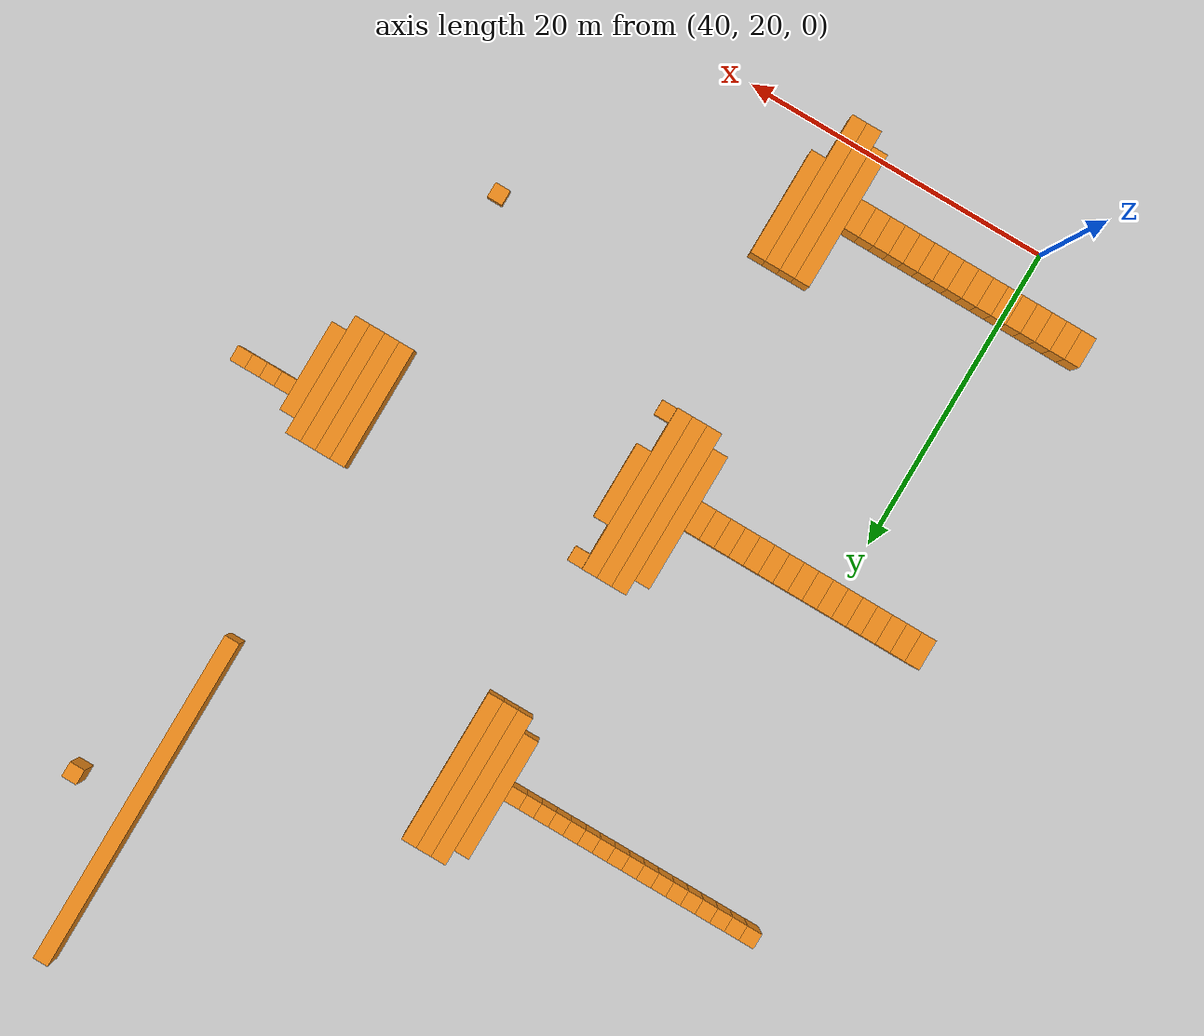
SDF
<sdf version="1.6">
 <world name="default">
  <include><uri>model://ground_plane</uri></include>
  <model name="unit_box_357">
   <pose>34.50    44.00     1.50 0 0 0</pose>
   <static>1</static>
   <link name="link">
    <inertial>
     <mass>5000</mass>
     <inertia><ixx>200</ixx><ixy>0</ixy><ixz>0</ixz><iyy>200</iyy><iyz>0</iyz><izz>200</izz></inertia>
    </inertial>
    <collision name="collision"><geometry><box><size>1 2 3</size></box></geometry></collision>
    <visual name="visual">
     <geometry><box><size>1 2 3</size></box></geometry>
     <material>
      <script><name>Gazebo/Orange</name><uri>file://media/materials/scripts/gazebo.material</uri></script>
     </material>
    </visual>
   </link>
  </model>
  <model name="unit_box_358">
   <pose>34.50    63.50     1.50 0 0 0</pose>
   <static>1</static>
   <link name="link">
    <inertial>
     <mass>5000</mass>
     <inertia><ixx>200</ixx><ixy>0</ixy><ixz>0</ixz><iyy>200</iyy><iyz>0</iyz><izz>200</izz></inertia>
    </inertial>
    <collision name="collision"><geometry><box><size>1 1 3</size></box></geometry></collision>
    <visual name="visual">
     <geometry><box><size>1 1 3</size></box></geometry>
     <material>
      <script><name>Gazebo/Orange</name><uri>file://media/materials/scripts/gazebo.material</uri></script>
     </material>
    </visual>
   </link>
  </model>
  <model name="unit_box_369">
   <pose>35.50    24.00     1.50 0 0 0</pose>
   <static>1</static>
   <link name="link">
    <inertial>
     <mass>5000</mass>
     <inertia><ixx>200</ixx><ixy>0</ixy><ixz>0</ixz><iyy>200</iyy><iyz>0</iyz><izz>200</izz></inertia>
    </inertial>
    <collision name="collision"><geometry><box><size>1 2 3</size></box></geometry></collision>
    <visual name="visual">
     <geometry><box><size>1 2 3</size></box></geometry>
     <material>
      <script><name>Gazebo/Orange</name><uri>file://media/materials/scripts/gazebo.material</uri></script>
     </material>
    </visual>
   </link>
  </model>
  <model name="unit_box_370">
   <pose>35.50    44.00     1.50 0 0 0</pose>
   <static>1</static>
   <link name="link">
    <inertial>
     <mass>5000</mass>
     <inertia><ixx>200</ixx><ixy>0</ixy><ixz>0</ixz><iyy>200</iyy><iyz>0</iyz><izz>200</izz></inertia>
    </inertial>
    <collision name="collision"><geometry><box><size>1 2 3</size></box></geometry></collision>
    <visual name="visual">
     <geometry><box><size>1 2 3</size></box></geometry>
     <material>
      <script><name>Gazebo/Orange</name><uri>file://media/materials/scripts/gazebo.material</uri></script>
     </material>
    </visual>
   </link>
  </model>
  <model name="unit_box_371">
   <pose>35.50    63.50     1.50 0 0 0</pose>
   <static>1</static>
   <link name="link">
    <inertial>
     <mass>5000</mass>
     <inertia><ixx>200</ixx><ixy>0</ixy><ixz>0</ixz><iyy>200</iyy><iyz>0</iyz><izz>200</izz></inertia>
    </inertial>
    <collision name="collision"><geometry><box><size>1 1 3</size></box></geometry></collision>
    <visual name="visual">
     <geometry><box><size>1 1 3</size></box></geometry>
     <material>
      <script><name>Gazebo/Orange</name><uri>file://media/materials/scripts/gazebo.material</uri></script>
     </material>
    </visual>
   </link>
  </model>
  <model name="unit_box_382">
   <pose>36.50    24.00     1.50 0 0 0</pose>
   <static>1</static>
   <link name="link">
    <inertial>
     <mass>5000</mass>
     <inertia><ixx>200</ixx><ixy>0</ixy><ixz>0</ixz><iyy>200</iyy><iyz>0</iyz><izz>200</izz></inertia>
    </inertial>
    <collision name="collision"><geometry><box><size>1 2 3</size></box></geometry></collision>
    <visual name="visual">
     <geometry><box><size>1 2 3</size></box></geometry>
     <material>
      <script><name>Gazebo/Orange</name><uri>file://media/materials/scripts/gazebo.material</uri></script>
     </material>
    </visual>
   </link>
  </model>
  <model name="unit_box_383">
   <pose>36.50    44.00     1.50 0 0 0</pose>
   <static>1</static>
   <link name="link">
    <inertial>
     <mass>5000</mass>
     <inertia><ixx>200</ixx><ixy>0</ixy><ixz>0</ixz><iyy>200</iyy><iyz>0</iyz><izz>200</izz></inertia>
    </inertial>
    <collision name="collision"><geometry><box><size>1 2 3</size></box></geometry></collision>
    <visual name="visual">
     <geometry><box><size>1 2 3</size></box></geometry>
     <material>
      <script><name>Gazebo/Orange</name><uri>file://media/materials/scripts/gazebo.material</uri></script>
     </material>
    </visual>
   </link>
  </model>
  <model name="unit_box_384">
   <pose>36.50    63.50     1.50 0 0 0</pose>
   <static>1</static>
   <link name="link">
    <inertial>
     <mass>5000</mass>
     <inertia><ixx>200</ixx><ixy>0</ixy><ixz>0</ixz><iyy>200</iyy><iyz>0</iyz><izz>200</izz></inertia>
    </inertial>
    <collision name="collision"><geometry><box><size>1 1 3</size></box></geometry></collision>
    <visual name="visual">
     <geometry><box><size>1 1 3</size></box></geometry>
     <material>
      <script><name>Gazebo/Orange</name><uri>file://media/materials/scripts/gazebo.material</uri></script>
     </material>
    </visual>
   </link>
  </model>
  <model name="unit_box_395">
   <pose>37.50    24.00     1.50 0 0 0</pose>
   <static>1</static>
   <link name="link">
    <inertial>
     <mass>5000</mass>
     <inertia><ixx>200</ixx><ixy>0</ixy><ixz>0</ixz><iyy>200</iyy><iyz>0</iyz><izz>200</izz></inertia>
    </inertial>
    <collision name="collision"><geometry><box><size>1 2 3</size></box></geometry></collision>
    <visual name="visual">
     <geometry><box><size>1 2 3</size></box></geometry>
     <material>
      <script><name>Gazebo/Orange</name><uri>file://media/materials/scripts/gazebo.material</uri></script>
     </material>
    </visual>
   </link>
  </model>
  <model name="unit_box_396">
   <pose>37.50    44.00     1.50 0 0 0</pose>
   <static>1</static>
   <link name="link">
    <inertial>
     <mass>5000</mass>
     <inertia><ixx>200</ixx><ixy>0</ixy><ixz>0</ixz><iyy>200</iyy><iyz>0</iyz><izz>200</izz></inertia>
    </inertial>
    <collision name="collision"><geometry><box><size>1 2 3</size></box></geometry></collision>
    <visual name="visual">
     <geometry><box><size>1 2 3</size></box></geometry>
     <material>
      <script><name>Gazebo/Orange</name><uri>file://media/materials/scripts/gazebo.material</uri></script>
     </material>
    </visual>
   </link>
  </model>
  <model name="unit_box_397">
   <pose>37.50    63.50     1.50 0 0 0</pose>
   <static>1</static>
   <link name="link">
    <inertial>
     <mass>5000</mass>
     <inertia><ixx>200</ixx><ixy>0</ixy><ixz>0</ixz><iyy>200</iyy><iyz>0</iyz><izz>200</izz></inertia>
    </inertial>
    <collision name="collision"><geometry><box><size>1 1 3</size></box></geometry></collision>
    <visual name="visual">
     <geometry><box><size>1 1 3</size></box></geometry>
     <material>
      <script><name>Gazebo/Orange</name><uri>file://media/materials/scripts/gazebo.material</uri></script>
     </material>
    </visual>
   </link>
  </model>
  <model name="unit_box_408">
   <pose>38.50    24.00     1.50 0 0 0</pose>
   <static>1</static>
   <link name="link">
    <inertial>
     <mass>5000</mass>
     <inertia><ixx>200</ixx><ixy>0</ixy><ixz>0</ixz><iyy>200</iyy><iyz>0</iyz><izz>200</izz></inertia>
    </inertial>
    <collision name="collision"><geometry><box><size>1 2 3</size></box></geometry></collision>
    <visual name="visual">
     <geometry><box><size>1 2 3</size></box></geometry>
     <material>
      <script><name>Gazebo/Orange</name><uri>file://media/materials/scripts/gazebo.material</uri></script>
     </material>
    </visual>
   </link>
  </model>
  <model name="unit_box_409">
   <pose>38.50    44.00     1.50 0 0 0</pose>
   <static>1</static>
   <link name="link">
    <inertial>
     <mass>5000</mass>
     <inertia><ixx>200</ixx><ixy>0</ixy><ixz>0</ixz><iyy>200</iyy><iyz>0</iyz><izz>200</izz></inertia>
    </inertial>
    <collision name="collision"><geometry><box><size>1 2 3</size></box></geometry></collision>
    <visual name="visual">
     <geometry><box><size>1 2 3</size></box></geometry>
     <material>
      <script><name>Gazebo/Orange</name><uri>file://media/materials/scripts/gazebo.material</uri></script>
     </material>
    </visual>
   </link>
  </model>
  <model name="unit_box_410">
   <pose>38.50    63.50     1.50 0 0 0</pose>
   <static>1</static>
   <link name="link">
    <inertial>
     <mass>5000</mass>
     <inertia><ixx>200</ixx><ixy>0</ixy><ixz>0</ixz><iyy>200</iyy><iyz>0</iyz><izz>200</izz></inertia>
    </inertial>
    <collision name="collision"><geometry><box><size>1 1 3</size></box></geometry></collision>
    <visual name="visual">
     <geometry><box><size>1 1 3</size></box></geometry>
     <material>
      <script><name>Gazebo/Orange</name><uri>file://media/materials/scripts/gazebo.material</uri></script>
     </material>
    </visual>
   </link>
  </model>
  <model name="unit_box_421">
   <pose>39.50    24.00     1.50 0 0 0</pose>
   <static>1</static>
   <link name="link">
    <inertial>
     <mass>5000</mass>
     <inertia><ixx>200</ixx><ixy>0</ixy><ixz>0</ixz><iyy>200</iyy><iyz>0</iyz><izz>200</izz></inertia>
    </inertial>
    <collision name="collision"><geometry><box><size>1 2 3</size></box></geometry></collision>
    <visual name="visual">
     <geometry><box><size>1 2 3</size></box></geometry>
     <material>
      <script><name>Gazebo/Orange</name><uri>file://media/materials/scripts/gazebo.material</uri></script>
     </material>
    </visual>
   </link>
  </model>
  <model name="unit_box_422">
   <pose>39.50    44.00     1.50 0 0 0</pose>
   <static>1</static>
   <link name="link">
    <inertial>
     <mass>5000</mass>
     <inertia><ixx>200</ixx><ixy>0</ixy><ixz>0</ixz><iyy>200</iyy><iyz>0</iyz><izz>200</izz></inertia>
    </inertial>
    <collision name="collision"><geometry><box><size>1 2 3</size></box></geometry></collision>
    <visual name="visual">
     <geometry><box><size>1 2 3</size></box></geometry>
     <material>
      <script><name>Gazebo/Orange</name><uri>file://media/materials/scripts/gazebo.material</uri></script>
     </material>
    </visual>
   </link>
  </model>
  <model name="unit_box_423">
   <pose>39.50    63.50     1.50 0 0 0</pose>
   <static>1</static>
   <link name="link">
    <inertial>
     <mass>5000</mass>
     <inertia><ixx>200</ixx><ixy>0</ixy><ixz>0</ixz><iyy>200</iyy><iyz>0</iyz><izz>200</izz></inertia>
    </inertial>
    <collision name="collision"><geometry><box><size>1 1 3</size></box></geometry></collision>
    <visual name="visual">
     <geometry><box><size>1 1 3</size></box></geometry>
     <material>
      <script><name>Gazebo/Orange</name><uri>file://media/materials/scripts/gazebo.material</uri></script>
     </material>
    </visual>
   </link>
  </model>
  <model name="unit_box_434">
   <pose>40.50    24.00     1.50 0 0 0</pose>
   <static>1</static>
   <link name="link">
    <inertial>
     <mass>5000</mass>
     <inertia><ixx>200</ixx><ixy>0</ixy><ixz>0</ixz><iyy>200</iyy><iyz>0</iyz><izz>200</izz></inertia>
    </inertial>
    <collision name="collision"><geometry><box><size>1 2 3</size></box></geometry></collision>
    <visual name="visual">
     <geometry><box><size>1 2 3</size></box></geometry>
     <material>
      <script><name>Gazebo/Orange</name><uri>file://media/materials/scripts/gazebo.material</uri></script>
     </material>
    </visual>
   </link>
  </model>
  <model name="unit_box_435">
   <pose>40.50    44.00     1.50 0 0 0</pose>
   <static>1</static>
   <link name="link">
    <inertial>
     <mass>5000</mass>
     <inertia><ixx>200</ixx><ixy>0</ixy><ixz>0</ixz><iyy>200</iyy><iyz>0</iyz><izz>200</izz></inertia>
    </inertial>
    <collision name="collision"><geometry><box><size>1 2 3</size></box></geometry></collision>
    <visual name="visual">
     <geometry><box><size>1 2 3</size></box></geometry>
     <material>
      <script><name>Gazebo/Orange</name><uri>file://media/materials/scripts/gazebo.material</uri></script>
     </material>
    </visual>
   </link>
  </model>
  <model name="unit_box_436">
   <pose>40.50    63.50     1.50 0 0 0</pose>
   <static>1</static>
   <link name="link">
    <inertial>
     <mass>5000</mass>
     <inertia><ixx>200</ixx><ixy>0</ixy><ixz>0</ixz><iyy>200</iyy><iyz>0</iyz><izz>200</izz></inertia>
    </inertial>
    <collision name="collision"><geometry><box><size>1 1 3</size></box></geometry></collision>
    <visual name="visual">
     <geometry><box><size>1 1 3</size></box></geometry>
     <material>
      <script><name>Gazebo/Orange</name><uri>file://media/materials/scripts/gazebo.material</uri></script>
     </material>
    </visual>
   </link>
  </model>
  <model name="unit_box_447">
   <pose>41.50    24.00     1.50 0 0 0</pose>
   <static>1</static>
   <link name="link">
    <inertial>
     <mass>5000</mass>
     <inertia><ixx>200</ixx><ixy>0</ixy><ixz>0</ixz><iyy>200</iyy><iyz>0</iyz><izz>200</izz></inertia>
    </inertial>
    <collision name="collision"><geometry><box><size>1 2 3</size></box></geometry></collision>
    <visual name="visual">
     <geometry><box><size>1 2 3</size></box></geometry>
     <material>
      <script><name>Gazebo/Orange</name><uri>file://media/materials/scripts/gazebo.material</uri></script>
     </material>
    </visual>
   </link>
  </model>
  <model name="unit_box_448">
   <pose>41.50    44.00     1.50 0 0 0</pose>
   <static>1</static>
   <link name="link">
    <inertial>
     <mass>5000</mass>
     <inertia><ixx>200</ixx><ixy>0</ixy><ixz>0</ixz><iyy>200</iyy><iyz>0</iyz><izz>200</izz></inertia>
    </inertial>
    <collision name="collision"><geometry><box><size>1 2 3</size></box></geometry></collision>
    <visual name="visual">
     <geometry><box><size>1 2 3</size></box></geometry>
     <material>
      <script><name>Gazebo/Orange</name><uri>file://media/materials/scripts/gazebo.material</uri></script>
     </material>
    </visual>
   </link>
  </model>
  <model name="unit_box_449">
   <pose>41.50    63.50     1.50 0 0 0</pose>
   <static>1</static>
   <link name="link">
    <inertial>
     <mass>5000</mass>
     <inertia><ixx>200</ixx><ixy>0</ixy><ixz>0</ixz><iyy>200</iyy><iyz>0</iyz><izz>200</izz></inertia>
    </inertial>
    <collision name="collision"><geometry><box><size>1 1 3</size></box></geometry></collision>
    <visual name="visual">
     <geometry><box><size>1 1 3</size></box></geometry>
     <material>
      <script><name>Gazebo/Orange</name><uri>file://media/materials/scripts/gazebo.material</uri></script>
     </material>
    </visual>
   </link>
  </model>
  <model name="unit_box_460">
   <pose>42.50    24.00     1.50 0 0 0</pose>
   <static>1</static>
   <link name="link">
    <inertial>
     <mass>5000</mass>
     <inertia><ixx>200</ixx><ixy>0</ixy><ixz>0</ixz><iyy>200</iyy><iyz>0</iyz><izz>200</izz></inertia>
    </inertial>
    <collision name="collision"><geometry><box><size>1 2 3</size></box></geometry></collision>
    <visual name="visual">
     <geometry><box><size>1 2 3</size></box></geometry>
     <material>
      <script><name>Gazebo/Orange</name><uri>file://media/materials/scripts/gazebo.material</uri></script>
     </material>
    </visual>
   </link>
  </model>
  <model name="unit_box_461">
   <pose>42.50    44.00     1.50 0 0 0</pose>
   <static>1</static>
   <link name="link">
    <inertial>
     <mass>5000</mass>
     <inertia><ixx>200</ixx><ixy>0</ixy><ixz>0</ixz><iyy>200</iyy><iyz>0</iyz><izz>200</izz></inertia>
    </inertial>
    <collision name="collision"><geometry><box><size>1 2 3</size></box></geometry></collision>
    <visual name="visual">
     <geometry><box><size>1 2 3</size></box></geometry>
     <material>
      <script><name>Gazebo/Orange</name><uri>file://media/materials/scripts/gazebo.material</uri></script>
     </material>
    </visual>
   </link>
  </model>
  <model name="unit_box_462">
   <pose>42.50    63.50     1.50 0 0 0</pose>
   <static>1</static>
   <link name="link">
    <inertial>
     <mass>5000</mass>
     <inertia><ixx>200</ixx><ixy>0</ixy><ixz>0</ixz><iyy>200</iyy><iyz>0</iyz><izz>200</izz></inertia>
    </inertial>
    <collision name="collision"><geometry><box><size>1 1 3</size></box></geometry></collision>
    <visual name="visual">
     <geometry><box><size>1 1 3</size></box></geometry>
     <material>
      <script><name>Gazebo/Orange</name><uri>file://media/materials/scripts/gazebo.material</uri></script>
     </material>
    </visual>
   </link>
  </model>
  <model name="unit_box_473">
   <pose>43.50    24.00     1.50 0 0 0</pose>
   <static>1</static>
   <link name="link">
    <inertial>
     <mass>5000</mass>
     <inertia><ixx>200</ixx><ixy>0</ixy><ixz>0</ixz><iyy>200</iyy><iyz>0</iyz><izz>200</izz></inertia>
    </inertial>
    <collision name="collision"><geometry><box><size>1 2 3</size></box></geometry></collision>
    <visual name="visual">
     <geometry><box><size>1 2 3</size></box></geometry>
     <material>
      <script><name>Gazebo/Orange</name><uri>file://media/materials/scripts/gazebo.material</uri></script>
     </material>
    </visual>
   </link>
  </model>
  <model name="unit_box_474">
   <pose>43.50    44.00     1.50 0 0 0</pose>
   <static>1</static>
   <link name="link">
    <inertial>
     <mass>5000</mass>
     <inertia><ixx>200</ixx><ixy>0</ixy><ixz>0</ixz><iyy>200</iyy><iyz>0</iyz><izz>200</izz></inertia>
    </inertial>
    <collision name="collision"><geometry><box><size>1 2 3</size></box></geometry></collision>
    <visual name="visual">
     <geometry><box><size>1 2 3</size></box></geometry>
     <material>
      <script><name>Gazebo/Orange</name><uri>file://media/materials/scripts/gazebo.material</uri></script>
     </material>
    </visual>
   </link>
  </model>
  <model name="unit_box_475">
   <pose>43.50    63.50     1.50 0 0 0</pose>
   <static>1</static>
   <link name="link">
    <inertial>
     <mass>5000</mass>
     <inertia><ixx>200</ixx><ixy>0</ixy><ixz>0</ixz><iyy>200</iyy><iyz>0</iyz><izz>200</izz></inertia>
    </inertial>
    <collision name="collision"><geometry><box><size>1 1 3</size></box></geometry></collision>
    <visual name="visual">
     <geometry><box><size>1 1 3</size></box></geometry>
     <material>
      <script><name>Gazebo/Orange</name><uri>file://media/materials/scripts/gazebo.material</uri></script>
     </material>
    </visual>
   </link>
  </model>
  <model name="unit_box_486">
   <pose>44.50    24.00     1.50 0 0 0</pose>
   <static>1</static>
   <link name="link">
    <inertial>
     <mass>5000</mass>
     <inertia><ixx>200</ixx><ixy>0</ixy><ixz>0</ixz><iyy>200</iyy><iyz>0</iyz><izz>200</izz></inertia>
    </inertial>
    <collision name="collision"><geometry><box><size>1 2 3</size></box></geometry></collision>
    <visual name="visual">
     <geometry><box><size>1 2 3</size></box></geometry>
     <material>
      <script><name>Gazebo/Orange</name><uri>file://media/materials/scripts/gazebo.material</uri></script>
     </material>
    </visual>
   </link>
  </model>
  <model name="unit_box_487">
   <pose>44.50    44.00     1.50 0 0 0</pose>
   <static>1</static>
   <link name="link">
    <inertial>
     <mass>5000</mass>
     <inertia><ixx>200</ixx><ixy>0</ixy><ixz>0</ixz><iyy>200</iyy><iyz>0</iyz><izz>200</izz></inertia>
    </inertial>
    <collision name="collision"><geometry><box><size>1 2 3</size></box></geometry></collision>
    <visual name="visual">
     <geometry><box><size>1 2 3</size></box></geometry>
     <material>
      <script><name>Gazebo/Orange</name><uri>file://media/materials/scripts/gazebo.material</uri></script>
     </material>
    </visual>
   </link>
  </model>
  <model name="unit_box_488">
   <pose>44.50    63.50     1.50 0 0 0</pose>
   <static>1</static>
   <link name="link">
    <inertial>
     <mass>5000</mass>
     <inertia><ixx>200</ixx><ixy>0</ixy><ixz>0</ixz><iyy>200</iyy><iyz>0</iyz><izz>200</izz></inertia>
    </inertial>
    <collision name="collision"><geometry><box><size>1 1 3</size></box></geometry></collision>
    <visual name="visual">
     <geometry><box><size>1 1 3</size></box></geometry>
     <material>
      <script><name>Gazebo/Orange</name><uri>file://media/materials/scripts/gazebo.material</uri></script>
     </material>
    </visual>
   </link>
  </model>
  <model name="unit_box_499">
   <pose>45.50    24.00     1.50 0 0 0</pose>
   <static>1</static>
   <link name="link">
    <inertial>
     <mass>5000</mass>
     <inertia><ixx>200</ixx><ixy>0</ixy><ixz>0</ixz><iyy>200</iyy><iyz>0</iyz><izz>200</izz></inertia>
    </inertial>
    <collision name="collision"><geometry><box><size>1 2 3</size></box></geometry></collision>
    <visual name="visual">
     <geometry><box><size>1 2 3</size></box></geometry>
     <material>
      <script><name>Gazebo/Orange</name><uri>file://media/materials/scripts/gazebo.material</uri></script>
     </material>
    </visual>
   </link>
  </model>
  <model name="unit_box_500">
   <pose>45.50    44.00     1.50 0 0 0</pose>
   <static>1</static>
   <link name="link">
    <inertial>
     <mass>5000</mass>
     <inertia><ixx>200</ixx><ixy>0</ixy><ixz>0</ixz><iyy>200</iyy><iyz>0</iyz><izz>200</izz></inertia>
    </inertial>
    <collision name="collision"><geometry><box><size>1 2 3</size></box></geometry></collision>
    <visual name="visual">
     <geometry><box><size>1 2 3</size></box></geometry>
     <material>
      <script><name>Gazebo/Orange</name><uri>file://media/materials/scripts/gazebo.material</uri></script>
     </material>
    </visual>
   </link>
  </model>
  <model name="unit_box_501">
   <pose>45.50    63.50     1.50 0 0 0</pose>
   <static>1</static>
   <link name="link">
    <inertial>
     <mass>5000</mass>
     <inertia><ixx>200</ixx><ixy>0</ixy><ixz>0</ixz><iyy>200</iyy><iyz>0</iyz><izz>200</izz></inertia>
    </inertial>
    <collision name="collision"><geometry><box><size>1 1 3</size></box></geometry></collision>
    <visual name="visual">
     <geometry><box><size>1 1 3</size></box></geometry>
     <material>
      <script><name>Gazebo/Orange</name><uri>file://media/materials/scripts/gazebo.material</uri></script>
     </material>
    </visual>
   </link>
  </model>
  <model name="unit_box_512">
   <pose>46.50    24.00     1.50 0 0 0</pose>
   <static>1</static>
   <link name="link">
    <inertial>
     <mass>5000</mass>
     <inertia><ixx>200</ixx><ixy>0</ixy><ixz>0</ixz><iyy>200</iyy><iyz>0</iyz><izz>200</izz></inertia>
    </inertial>
    <collision name="collision"><geometry><box><size>1 2 3</size></box></geometry></collision>
    <visual name="visual">
     <geometry><box><size>1 2 3</size></box></geometry>
     <material>
      <script><name>Gazebo/Orange</name><uri>file://media/materials/scripts/gazebo.material</uri></script>
     </material>
    </visual>
   </link>
  </model>
  <model name="unit_box_513">
   <pose>46.50    44.00     1.50 0 0 0</pose>
   <static>1</static>
   <link name="link">
    <inertial>
     <mass>5000</mass>
     <inertia><ixx>200</ixx><ixy>0</ixy><ixz>0</ixz><iyy>200</iyy><iyz>0</iyz><izz>200</izz></inertia>
    </inertial>
    <collision name="collision"><geometry><box><size>1 2 3</size></box></geometry></collision>
    <visual name="visual">
     <geometry><box><size>1 2 3</size></box></geometry>
     <material>
      <script><name>Gazebo/Orange</name><uri>file://media/materials/scripts/gazebo.material</uri></script>
     </material>
    </visual>
   </link>
  </model>
  <model name="unit_box_514">
   <pose>46.50    63.50     1.50 0 0 0</pose>
   <static>1</static>
   <link name="link">
    <inertial>
     <mass>5000</mass>
     <inertia><ixx>200</ixx><ixy>0</ixy><ixz>0</ixz><iyy>200</iyy><iyz>0</iyz><izz>200</izz></inertia>
    </inertial>
    <collision name="collision"><geometry><box><size>1 1 3</size></box></geometry></collision>
    <visual name="visual">
     <geometry><box><size>1 1 3</size></box></geometry>
     <material>
      <script><name>Gazebo/Orange</name><uri>file://media/materials/scripts/gazebo.material</uri></script>
     </material>
    </visual>
   </link>
  </model>
  <model name="unit_box_525">
   <pose>47.50    24.00     1.50 0 0 0</pose>
   <static>1</static>
   <link name="link">
    <inertial>
     <mass>5000</mass>
     <inertia><ixx>200</ixx><ixy>0</ixy><ixz>0</ixz><iyy>200</iyy><iyz>0</iyz><izz>200</izz></inertia>
    </inertial>
    <collision name="collision"><geometry><box><size>1 2 3</size></box></geometry></collision>
    <visual name="visual">
     <geometry><box><size>1 2 3</size></box></geometry>
     <material>
      <script><name>Gazebo/Orange</name><uri>file://media/materials/scripts/gazebo.material</uri></script>
     </material>
    </visual>
   </link>
  </model>
  <model name="unit_box_526">
   <pose>47.50    44.00     1.50 0 0 0</pose>
   <static>1</static>
   <link name="link">
    <inertial>
     <mass>5000</mass>
     <inertia><ixx>200</ixx><ixy>0</ixy><ixz>0</ixz><iyy>200</iyy><iyz>0</iyz><izz>200</izz></inertia>
    </inertial>
    <collision name="collision"><geometry><box><size>1 2 3</size></box></geometry></collision>
    <visual name="visual">
     <geometry><box><size>1 2 3</size></box></geometry>
     <material>
      <script><name>Gazebo/Orange</name><uri>file://media/materials/scripts/gazebo.material</uri></script>
     </material>
    </visual>
   </link>
  </model>
  <model name="unit_box_527">
   <pose>47.50    63.50     1.50 0 0 0</pose>
   <static>1</static>
   <link name="link">
    <inertial>
     <mass>5000</mass>
     <inertia><ixx>200</ixx><ixy>0</ixy><ixz>0</ixz><iyy>200</iyy><iyz>0</iyz><izz>200</izz></inertia>
    </inertial>
    <collision name="collision"><geometry><box><size>1 1 3</size></box></geometry></collision>
    <visual name="visual">
     <geometry><box><size>1 1 3</size></box></geometry>
     <material>
      <script><name>Gazebo/Orange</name><uri>file://media/materials/scripts/gazebo.material</uri></script>
     </material>
    </visual>
   </link>
  </model>
  <model name="unit_box_538">
   <pose>48.50    24.00     1.50 0 0 0</pose>
   <static>1</static>
   <link name="link">
    <inertial>
     <mass>5000</mass>
     <inertia><ixx>200</ixx><ixy>0</ixy><ixz>0</ixz><iyy>200</iyy><iyz>0</iyz><izz>200</izz></inertia>
    </inertial>
    <collision name="collision"><geometry><box><size>1 2 3</size></box></geometry></collision>
    <visual name="visual">
     <geometry><box><size>1 2 3</size></box></geometry>
     <material>
      <script><name>Gazebo/Orange</name><uri>file://media/materials/scripts/gazebo.material</uri></script>
     </material>
    </visual>
   </link>
  </model>
  <model name="unit_box_539">
   <pose>48.50    44.00     1.50 0 0 0</pose>
   <static>1</static>
   <link name="link">
    <inertial>
     <mass>5000</mass>
     <inertia><ixx>200</ixx><ixy>0</ixy><ixz>0</ixz><iyy>200</iyy><iyz>0</iyz><izz>200</izz></inertia>
    </inertial>
    <collision name="collision"><geometry><box><size>1 2 3</size></box></geometry></collision>
    <visual name="visual">
     <geometry><box><size>1 2 3</size></box></geometry>
     <material>
      <script><name>Gazebo/Orange</name><uri>file://media/materials/scripts/gazebo.material</uri></script>
     </material>
    </visual>
   </link>
  </model>
  <model name="unit_box_540">
   <pose>48.50    63.50     1.50 0 0 0</pose>
   <static>1</static>
   <link name="link">
    <inertial>
     <mass>5000</mass>
     <inertia><ixx>200</ixx><ixy>0</ixy><ixz>0</ixz><iyy>200</iyy><iyz>0</iyz><izz>200</izz></inertia>
    </inertial>
    <collision name="collision"><geometry><box><size>1 1 3</size></box></geometry></collision>
    <visual name="visual">
     <geometry><box><size>1 1 3</size></box></geometry>
     <material>
      <script><name>Gazebo/Orange</name><uri>file://media/materials/scripts/gazebo.material</uri></script>
     </material>
    </visual>
   </link>
  </model>
  <model name="unit_box_551">
   <pose>49.50    24.00     1.50 0 0 0</pose>
   <static>1</static>
   <link name="link">
    <inertial>
     <mass>5000</mass>
     <inertia><ixx>200</ixx><ixy>0</ixy><ixz>0</ixz><iyy>200</iyy><iyz>0</iyz><izz>200</izz></inertia>
    </inertial>
    <collision name="collision"><geometry><box><size>1 2 3</size></box></geometry></collision>
    <visual name="visual">
     <geometry><box><size>1 2 3</size></box></geometry>
     <material>
      <script><name>Gazebo/Orange</name><uri>file://media/materials/scripts/gazebo.material</uri></script>
     </material>
    </visual>
   </link>
  </model>
  <model name="unit_box_552">
   <pose>49.50    44.00     1.50 0 0 0</pose>
   <static>1</static>
   <link name="link">
    <inertial>
     <mass>5000</mass>
     <inertia><ixx>200</ixx><ixy>0</ixy><ixz>0</ixz><iyy>200</iyy><iyz>0</iyz><izz>200</izz></inertia>
    </inertial>
    <collision name="collision"><geometry><box><size>1 2 3</size></box></geometry></collision>
    <visual name="visual">
     <geometry><box><size>1 2 3</size></box></geometry>
     <material>
      <script><name>Gazebo/Orange</name><uri>file://media/materials/scripts/gazebo.material</uri></script>
     </material>
    </visual>
   </link>
  </model>
  <model name="unit_box_553">
   <pose>49.50    63.50     1.50 0 0 0</pose>
   <static>1</static>
   <link name="link">
    <inertial>
     <mass>5000</mass>
     <inertia><ixx>200</ixx><ixy>0</ixy><ixz>0</ixz><iyy>200</iyy><iyz>0</iyz><izz>200</izz></inertia>
    </inertial>
    <collision name="collision"><geometry><box><size>1 1 3</size></box></geometry></collision>
    <visual name="visual">
     <geometry><box><size>1 1 3</size></box></geometry>
     <material>
      <script><name>Gazebo/Orange</name><uri>file://media/materials/scripts/gazebo.material</uri></script>
     </material>
    </visual>
   </link>
  </model>
  <model name="unit_box_564">
   <pose>50.50    24.00     1.50 0 0 0</pose>
   <static>1</static>
   <link name="link">
    <inertial>
     <mass>5000</mass>
     <inertia><ixx>200</ixx><ixy>0</ixy><ixz>0</ixz><iyy>200</iyy><iyz>0</iyz><izz>200</izz></inertia>
    </inertial>
    <collision name="collision"><geometry><box><size>1 2 3</size></box></geometry></collision>
    <visual name="visual">
     <geometry><box><size>1 2 3</size></box></geometry>
     <material>
      <script><name>Gazebo/Orange</name><uri>file://media/materials/scripts/gazebo.material</uri></script>
     </material>
    </visual>
   </link>
  </model>
  <model name="unit_box_565">
   <pose>50.50    44.50     1.50 0 0 0</pose>
   <static>1</static>
   <link name="link">
    <inertial>
     <mass>5000</mass>
     <inertia><ixx>200</ixx><ixy>0</ixy><ixz>0</ixz><iyy>200</iyy><iyz>0</iyz><izz>200</izz></inertia>
    </inertial>
    <collision name="collision"><geometry><box><size>1 9 3</size></box></geometry></collision>
    <visual name="visual">
     <geometry><box><size>1 9 3</size></box></geometry>
     <material>
      <script><name>Gazebo/Orange</name><uri>file://media/materials/scripts/gazebo.material</uri></script>
     </material>
    </visual>
   </link>
  </model>
  <model name="unit_box_566">
   <pose>50.50    63.50     1.50 0 0 0</pose>
   <static>1</static>
   <link name="link">
    <inertial>
     <mass>5000</mass>
     <inertia><ixx>200</ixx><ixy>0</ixy><ixz>0</ixz><iyy>200</iyy><iyz>0</iyz><izz>200</izz></inertia>
    </inertial>
    <collision name="collision"><geometry><box><size>1 1 3</size></box></geometry></collision>
    <visual name="visual">
     <geometry><box><size>1 1 3</size></box></geometry>
     <material>
      <script><name>Gazebo/Orange</name><uri>file://media/materials/scripts/gazebo.material</uri></script>
     </material>
    </visual>
   </link>
  </model>
  <model name="unit_box_580">
   <pose>51.50    24.50     1.50 0 0 0</pose>
   <static>1</static>
   <link name="link">
    <inertial>
     <mass>5000</mass>
     <inertia><ixx>200</ixx><ixy>0</ixy><ixz>0</ixz><iyy>200</iyy><iyz>0</iyz><izz>200</izz></inertia>
    </inertial>
    <collision name="collision"><geometry><box><size>1 9 3</size></box></geometry></collision>
    <visual name="visual">
     <geometry><box><size>1 9 3</size></box></geometry>
     <material>
      <script><name>Gazebo/Orange</name><uri>file://media/materials/scripts/gazebo.material</uri></script>
     </material>
    </visual>
   </link>
  </model>
  <model name="unit_box_581">
   <pose>51.50    44.50     1.50 0 0 0</pose>
   <static>1</static>
   <link name="link">
    <inertial>
     <mass>5000</mass>
     <inertia><ixx>200</ixx><ixy>0</ixy><ixz>0</ixz><iyy>200</iyy><iyz>0</iyz><izz>200</izz></inertia>
    </inertial>
    <collision name="collision"><geometry><box><size>1 11 3</size></box></geometry></collision>
    <visual name="visual">
     <geometry><box><size>1 11 3</size></box></geometry>
     <material>
      <script><name>Gazebo/Orange</name><uri>file://media/materials/scripts/gazebo.material</uri></script>
     </material>
    </visual>
   </link>
  </model>
  <model name="unit_box_582">
   <pose>51.50    64.00     1.50 0 0 0</pose>
   <static>1</static>
   <link name="link">
    <inertial>
     <mass>5000</mass>
     <inertia><ixx>200</ixx><ixy>0</ixy><ixz>0</ixz><iyy>200</iyy><iyz>0</iyz><izz>200</izz></inertia>
    </inertial>
    <collision name="collision"><geometry><box><size>1 8 3</size></box></geometry></collision>
    <visual name="visual">
     <geometry><box><size>1 8 3</size></box></geometry>
     <material>
      <script><name>Gazebo/Orange</name><uri>file://media/materials/scripts/gazebo.material</uri></script>
     </material>
    </visual>
   </link>
  </model>
  <model name="unit_box_594">
   <pose>52.50    24.00     1.50 0 0 0</pose>
   <static>1</static>
   <link name="link">
    <inertial>
     <mass>5000</mass>
     <inertia><ixx>200</ixx><ixy>0</ixy><ixz>0</ixz><iyy>200</iyy><iyz>0</iyz><izz>200</izz></inertia>
    </inertial>
    <collision name="collision"><geometry><box><size>1 10 3</size></box></geometry></collision>
    <visual name="visual">
     <geometry><box><size>1 10 3</size></box></geometry>
     <material>
      <script><name>Gazebo/Orange</name><uri>file://media/materials/scripts/gazebo.material</uri></script>
     </material>
    </visual>
   </link>
  </model>
  <model name="unit_box_595">
   <pose>52.50    44.50     1.50 0 0 0</pose>
   <static>1</static>
   <link name="link">
    <inertial>
     <mass>5000</mass>
     <inertia><ixx>200</ixx><ixy>0</ixy><ixz>0</ixz><iyy>200</iyy><iyz>0</iyz><izz>200</izz></inertia>
    </inertial>
    <collision name="collision"><geometry><box><size>1 11 3</size></box></geometry></collision>
    <visual name="visual">
     <geometry><box><size>1 11 3</size></box></geometry>
     <material>
      <script><name>Gazebo/Orange</name><uri>file://media/materials/scripts/gazebo.material</uri></script>
     </material>
    </visual>
   </link>
  </model>
  <model name="unit_box_596">
   <pose>52.50    64.00     1.50 0 0 0</pose>
   <static>1</static>
   <link name="link">
    <inertial>
     <mass>5000</mass>
     <inertia><ixx>200</ixx><ixy>0</ixy><ixz>0</ixz><iyy>200</iyy><iyz>0</iyz><izz>200</izz></inertia>
    </inertial>
    <collision name="collision"><geometry><box><size>1 10 3</size></box></geometry></collision>
    <visual name="visual">
     <geometry><box><size>1 10 3</size></box></geometry>
     <material>
      <script><name>Gazebo/Orange</name><uri>file://media/materials/scripts/gazebo.material</uri></script>
     </material>
    </visual>
   </link>
  </model>
  <model name="unit_box_608">
   <pose>53.50    24.00     1.50 0 0 0</pose>
   <static>1</static>
   <link name="link">
    <inertial>
     <mass>5000</mass>
     <inertia><ixx>200</ixx><ixy>0</ixy><ixz>0</ixz><iyy>200</iyy><iyz>0</iyz><izz>200</izz></inertia>
    </inertial>
    <collision name="collision"><geometry><box><size>1 10 3</size></box></geometry></collision>
    <visual name="visual">
     <geometry><box><size>1 10 3</size></box></geometry>
     <material>
      <script><name>Gazebo/Orange</name><uri>file://media/materials/scripts/gazebo.material</uri></script>
     </material>
    </visual>
   </link>
  </model>
  <model name="unit_box_609">
   <pose>53.50    44.50     1.50 0 0 0</pose>
   <static>1</static>
   <link name="link">
    <inertial>
     <mass>5000</mass>
     <inertia><ixx>200</ixx><ixy>0</ixy><ixz>0</ixz><iyy>200</iyy><iyz>0</iyz><izz>200</izz></inertia>
    </inertial>
    <collision name="collision"><geometry><box><size>1 11 3</size></box></geometry></collision>
    <visual name="visual">
     <geometry><box><size>1 11 3</size></box></geometry>
     <material>
      <script><name>Gazebo/Orange</name><uri>file://media/materials/scripts/gazebo.material</uri></script>
     </material>
    </visual>
   </link>
  </model>
  <model name="unit_box_610">
   <pose>53.50    64.00     1.50 0 0 0</pose>
   <static>1</static>
   <link name="link">
    <inertial>
     <mass>5000</mass>
     <inertia><ixx>200</ixx><ixy>0</ixy><ixz>0</ixz><iyy>200</iyy><iyz>0</iyz><izz>200</izz></inertia>
    </inertial>
    <collision name="collision"><geometry><box><size>1 10 3</size></box></geometry></collision>
    <visual name="visual">
     <geometry><box><size>1 10 3</size></box></geometry>
     <material>
      <script><name>Gazebo/Orange</name><uri>file://media/materials/scripts/gazebo.material</uri></script>
     </material>
    </visual>
   </link>
  </model>
  <model name="unit_box_623">
   <pose>54.50    25.50     1.50 0 0 0</pose>
   <static>1</static>
   <link name="link">
    <inertial>
     <mass>5000</mass>
     <inertia><ixx>200</ixx><ixy>0</ixy><ixz>0</ixz><iyy>200</iyy><iyz>0</iyz><izz>200</izz></inertia>
    </inertial>
    <collision name="collision"><geometry><box><size>1 7 3</size></box></geometry></collision>
    <visual name="visual">
     <geometry><box><size>1 7 3</size></box></geometry>
     <material>
      <script><name>Gazebo/Orange</name><uri>file://media/materials/scripts/gazebo.material</uri></script>
     </material>
    </visual>
   </link>
  </model>
  <model name="unit_box_624">
   <pose>54.50    39.50     1.50 0 0 0</pose>
   <static>1</static>
   <link name="link">
    <inertial>
     <mass>5000</mass>
     <inertia><ixx>200</ixx><ixy>0</ixy><ixz>0</ixz><iyy>200</iyy><iyz>0</iyz><izz>200</izz></inertia>
    </inertial>
    <collision name="collision"><geometry><box><size>1 1 1</size></box></geometry></collision>
    <visual name="visual">
     <geometry><box><size>1 1 1</size></box></geometry>
     <material>
      <script><name>Gazebo/Orange</name><uri>file://media/materials/scripts/gazebo.material</uri></script>
     </material>
    </visual>
   </link>
  </model>
  <model name="unit_box_625">
   <pose>54.50    44.50     1.50 0 0 0</pose>
   <static>1</static>
   <link name="link">
    <inertial>
     <mass>5000</mass>
     <inertia><ixx>200</ixx><ixy>0</ixy><ixz>0</ixz><iyy>200</iyy><iyz>0</iyz><izz>200</izz></inertia>
    </inertial>
    <collision name="collision"><geometry><box><size>1 5 3</size></box></geometry></collision>
    <visual name="visual">
     <geometry><box><size>1 5 3</size></box></geometry>
     <material>
      <script><name>Gazebo/Orange</name><uri>file://media/materials/scripts/gazebo.material</uri></script>
     </material>
    </visual>
   </link>
  </model>
  <model name="unit_box_626">
   <pose>54.50    49.50     1.50 0 0 0</pose>
   <static>1</static>
   <link name="link">
    <inertial>
     <mass>5000</mass>
     <inertia><ixx>200</ixx><ixy>0</ixy><ixz>0</ixz><iyy>200</iyy><iyz>0</iyz><izz>200</izz></inertia>
    </inertial>
    <collision name="collision"><geometry><box><size>1 1 1</size></box></geometry></collision>
    <visual name="visual">
     <geometry><box><size>1 1 1</size></box></geometry>
     <material>
      <script><name>Gazebo/Orange</name><uri>file://media/materials/scripts/gazebo.material</uri></script>
     </material>
    </visual>
   </link>
  </model>
  <model name="unit_box_627">
   <pose>54.50    64.00     1.50 0 0 0</pose>
   <static>1</static>
   <link name="link">
    <inertial>
     <mass>5000</mass>
     <inertia><ixx>200</ixx><ixy>0</ixy><ixz>0</ixz><iyy>200</iyy><iyz>0</iyz><izz>200</izz></inertia>
    </inertial>
    <collision name="collision"><geometry><box><size>1 10 3</size></box></geometry></collision>
    <visual name="visual">
     <geometry><box><size>1 10 3</size></box></geometry>
     <material>
      <script><name>Gazebo/Orange</name><uri>file://media/materials/scripts/gazebo.material</uri></script>
     </material>
    </visual>
   </link>
  </model>
  <model name="unit_box_741">
   <pose>69.50    33.50     1.50 0 0 0</pose>
   <static>1</static>
   <link name="link">
    <inertial>
     <mass>5000</mass>
     <inertia><ixx>200</ixx><ixy>0</ixy><ixz>0</ixz><iyy>200</iyy><iyz>0</iyz><izz>200</izz></inertia>
    </inertial>
    <collision name="collision"><geometry><box><size>1 1 1</size></box></geometry></collision>
    <visual name="visual">
     <geometry><box><size>1 1 1</size></box></geometry>
     <material>
      <script><name>Gazebo/Orange</name><uri>file://media/materials/scripts/gazebo.material</uri></script>
     </material>
    </visual>
   </link>
  </model>
  <model name="unit_box_742">
   <pose>69.50    48.00     1.50 0 0 0</pose>
   <static>1</static>
   <link name="link">
    <inertial>
     <mass>5000</mass>
     <inertia><ixx>200</ixx><ixy>0</ixy><ixz>0</ixz><iyy>200</iyy><iyz>0</iyz><izz>200</izz></inertia>
    </inertial>
    <collision name="collision"><geometry><box><size>1 8 3</size></box></geometry></collision>
    <visual name="visual">
     <geometry><box><size>1 8 3</size></box></geometry>
     <material>
      <script><name>Gazebo/Orange</name><uri>file://media/materials/scripts/gazebo.material</uri></script>
     </material>
    </visual>
   </link>
  </model>
  <model name="unit_box_743">
   <pose>69.50    75.00     1.50 0 0 0</pose>
   <static>1</static>
   <link name="link">
    <inertial>
     <mass>5000</mass>
     <inertia><ixx>200</ixx><ixy>0</ixy><ixz>0</ixz><iyy>200</iyy><iyz>0</iyz><izz>200</izz></inertia>
    </inertial>
    <collision name="collision"><geometry><box><size>1 22 3</size></box></geometry></collision>
    <visual name="visual">
     <geometry><box><size>1 22 3</size></box></geometry>
     <material>
      <script><name>Gazebo/Orange</name><uri>file://media/materials/scripts/gazebo.material</uri></script>
     </material>
    </visual>
   </link>
  </model>
  <model name="unit_box_756">
   <pose>70.50    48.00     1.50 0 0 0</pose>
   <static>1</static>
   <link name="link">
    <inertial>
     <mass>5000</mass>
     <inertia><ixx>200</ixx><ixy>0</ixy><ixz>0</ixz><iyy>200</iyy><iyz>0</iyz><izz>200</izz></inertia>
    </inertial>
    <collision name="collision"><geometry><box><size>1 8 3</size></box></geometry></collision>
    <visual name="visual">
     <geometry><box><size>1 8 3</size></box></geometry>
     <material>
      <script><name>Gazebo/Orange</name><uri>file://media/materials/scripts/gazebo.material</uri></script>
     </material>
    </visual>
   </link>
  </model>
  <model name="unit_box_769">
   <pose>71.50    48.00     1.50 0 0 0</pose>
   <static>1</static>
   <link name="link">
    <inertial>
     <mass>5000</mass>
     <inertia><ixx>200</ixx><ixy>0</ixy><ixz>0</ixz><iyy>200</iyy><iyz>0</iyz><izz>200</izz></inertia>
    </inertial>
    <collision name="collision"><geometry><box><size>1 8 3</size></box></geometry></collision>
    <visual name="visual">
     <geometry><box><size>1 8 3</size></box></geometry>
     <material>
      <script><name>Gazebo/Orange</name><uri>file://media/materials/scripts/gazebo.material</uri></script>
     </material>
    </visual>
   </link>
  </model>
  <model name="unit_box_782">
   <pose>72.50    48.00     1.50 0 0 0</pose>
   <static>1</static>
   <link name="link">
    <inertial>
     <mass>5000</mass>
     <inertia><ixx>200</ixx><ixy>0</ixy><ixz>0</ixz><iyy>200</iyy><iyz>0</iyz><izz>200</izz></inertia>
    </inertial>
    <collision name="collision"><geometry><box><size>1 8 3</size></box></geometry></collision>
    <visual name="visual">
     <geometry><box><size>1 8 3</size></box></geometry>
     <material>
      <script><name>Gazebo/Orange</name><uri>file://media/materials/scripts/gazebo.material</uri></script>
     </material>
    </visual>
   </link>
  </model>
  <model name="unit_box_797">
   <pose>73.50    48.00     1.50 0 0 0</pose>
   <static>1</static>
   <link name="link">
    <inertial>
     <mass>5000</mass>
     <inertia><ixx>200</ixx><ixy>0</ixy><ixz>0</ixz><iyy>200</iyy><iyz>0</iyz><izz>200</izz></inertia>
    </inertial>
    <collision name="collision"><geometry><box><size>1 6 3</size></box></geometry></collision>
    <visual name="visual">
     <geometry><box><size>1 6 3</size></box></geometry>
     <material>
      <script><name>Gazebo/Orange</name><uri>file://media/materials/scripts/gazebo.material</uri></script>
     </material>
    </visual>
   </link>
  </model>
  <model name="unit_box_798">
   <pose>73.50    75.50     1.50 0 0 0</pose>
   <static>1</static>
   <link name="link">
    <inertial>
     <mass>5000</mass>
     <inertia><ixx>200</ixx><ixy>0</ixy><ixz>0</ixz><iyy>200</iyy><iyz>0</iyz><izz>200</izz></inertia>
    </inertial>
    <collision name="collision"><geometry><box><size>1 1 3</size></box></geometry></collision>
    <visual name="visual">
     <geometry><box><size>1 1 3</size></box></geometry>
     <material>
      <script><name>Gazebo/Orange</name><uri>file://media/materials/scripts/gazebo.material</uri></script>
     </material>
    </visual>
   </link>
  </model>
  <model name="unit_box_813">
   <pose>74.50    49.50     1.50 0 0 0</pose>
   <static>1</static>
   <link name="link">
    <inertial>
     <mass>5000</mass>
     <inertia><ixx>200</ixx><ixy>0</ixy><ixz>0</ixz><iyy>200</iyy><iyz>0</iyz><izz>200</izz></inertia>
    </inertial>
    <collision name="collision"><geometry><box><size>1 1 3</size></box></geometry></collision>
    <visual name="visual">
     <geometry><box><size>1 1 3</size></box></geometry>
     <material>
      <script><name>Gazebo/Orange</name><uri>file://media/materials/scripts/gazebo.material</uri></script>
     </material>
    </visual>
   </link>
  </model>
  <model name="unit_box_828">
   <pose>75.50    49.50     1.50 0 0 0</pose>
   <static>1</static>
   <link name="link">
    <inertial>
     <mass>5000</mass>
     <inertia><ixx>200</ixx><ixy>0</ixy><ixz>0</ixz><iyy>200</iyy><iyz>0</iyz><izz>200</izz></inertia>
    </inertial>
    <collision name="collision"><geometry><box><size>1 1 3</size></box></geometry></collision>
    <visual name="visual">
     <geometry><box><size>1 1 3</size></box></geometry>
     <material>
      <script><name>Gazebo/Orange</name><uri>file://media/materials/scripts/gazebo.material</uri></script>
     </material>
    </visual>
   </link>
  </model>
  <model name="unit_box_843">
   <pose>76.50    49.50     1.50 0 0 0</pose>
   <static>1</static>
   <link name="link">
    <inertial>
     <mass>5000</mass>
     <inertia><ixx>200</ixx><ixy>0</ixy><ixz>0</ixz><iyy>200</iyy><iyz>0</iyz><izz>200</izz></inertia>
    </inertial>
    <collision name="collision"><geometry><box><size>1 1 3</size></box></geometry></collision>
    <visual name="visual">
     <geometry><box><size>1 1 3</size></box></geometry>
     <material>
      <script><name>Gazebo/Orange</name><uri>file://media/materials/scripts/gazebo.material</uri></script>
     </material>
    </visual>
   </link>
  </model>
  <model name="unit_box_858">
   <pose>77.50    49.50     1.50 0 0 0</pose>
   <static>1</static>
   <link name="link">
    <inertial>
     <mass>5000</mass>
     <inertia><ixx>200</ixx><ixy>0</ixy><ixz>0</ixz><iyy>200</iyy><iyz>0</iyz><izz>200</izz></inertia>
    </inertial>
    <collision name="collision"><geometry><box><size>1 1 3</size></box></geometry></collision>
    <visual name="visual">
     <geometry><box><size>1 1 3</size></box></geometry>
     <material>
      <script><name>Gazebo/Orange</name><uri>file://media/materials/scripts/gazebo.material</uri></script>
     </material>
    </visual>
   </link>
  </model>
 </world>
</sdf>
